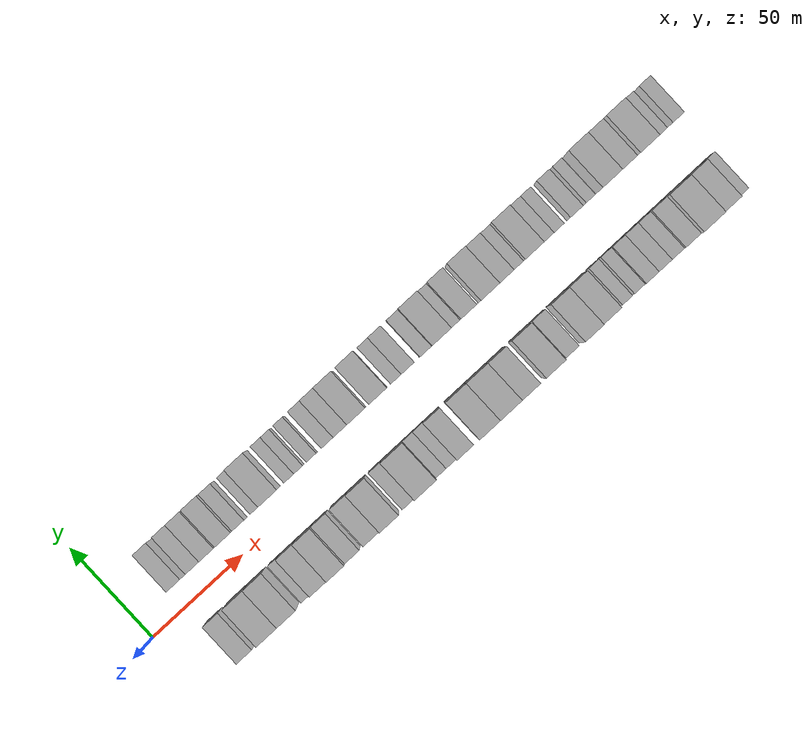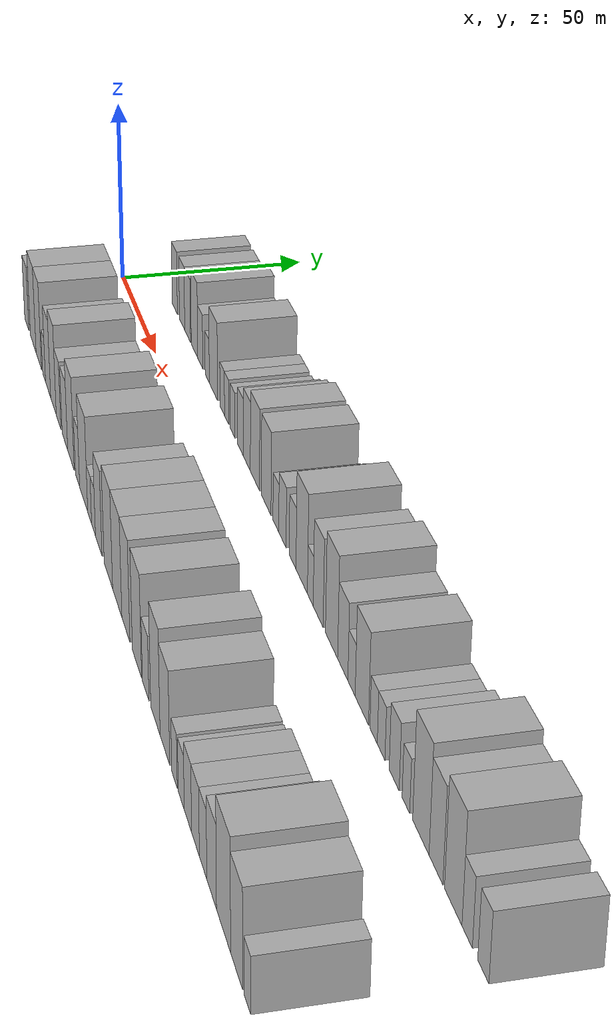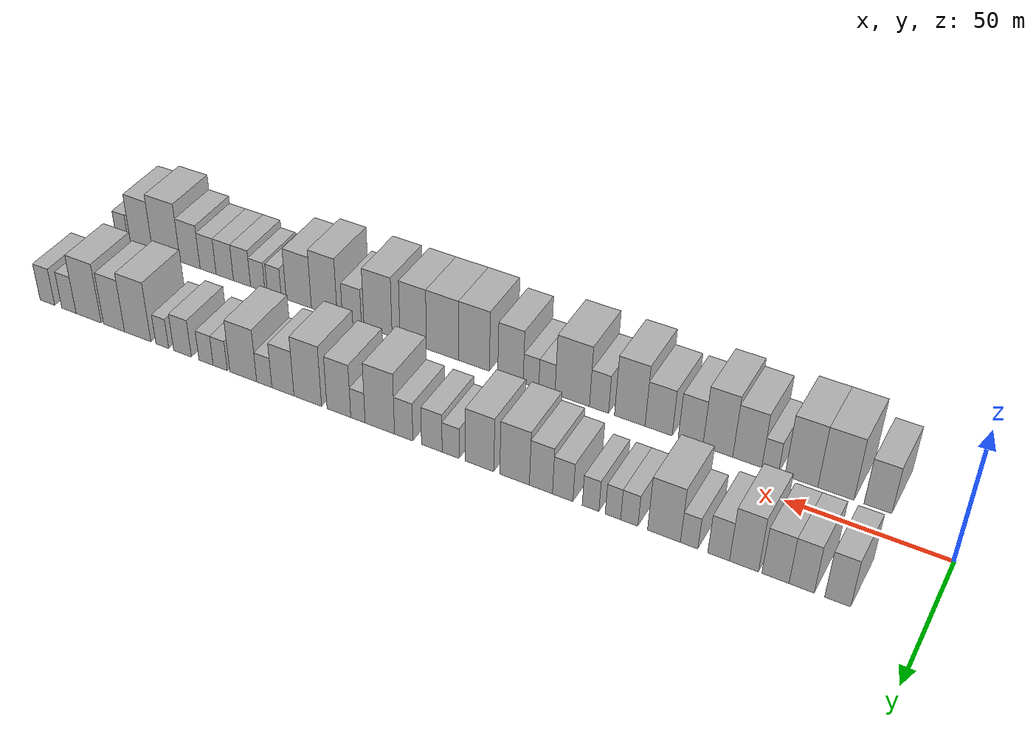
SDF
<sdf version="1.6">
 <world name="default">
  <scene>
   <sky><clouds><speed>12</speed></clouds></sky>
   <ambient>0.4 0.4 0.4 1</ambient>
   <background>0.7 0.7 0.7 1</background>
   <shadows>1</shadows>
  </scene>
  <gravity>0 0 -9.8066</gravity>
  <magnetic_field>6e-06 2.3e-05 -4.2e-05</magnetic_field>
  <physics default="0" name="default_physics" type="ode">
   <ode>
    <solver>
     <type>quick</type>
     <iters>10</iters>
     <sor>1.0</sor>
     <use_dynamic_moi_rescaling>0</use_dynamic_moi_rescaling>
    </solver>
    <constraints>
     <cfm>0</cfm>
     <erp>0.2</erp>
     <contact_max_correcting_vel>100</contact_max_correcting_vel>
     <contact_surface_layer>0.001</contact_surface_layer>
    </constraints>
   </ode>
   <max_step_size>0.004</max_step_size>
   <real_time_factor>1</real_time_factor>
   <real_time_update_rate>250</real_time_update_rate>
  </physics>
  <light name="sun" type="directional">
   <pose>0 0 10 0 0 0</pose>
   <diffuse>0.8 0.8 0.8 1</diffuse>
   <specular>0.2 0.2 0.2 1</specular>
   <attenuation>
    <range>1000</range>
    <constant>0.9</constant>
    <linear>0.01</linear>
    <quadratic>0.001</quadratic>
   </attenuation>
   <direction>-0.5 0.1 -0.9</direction>
  </light>
  <model name="building_1">
   <static>1</static>
   <pose>23.7067 20.0000 0 0.000000 0.000000 1.570796</pose>
   <link name="link">
    <pose>0 0 9.00 0 0 0</pose>
    <collision name="collision"><geometry><box><size>20.0000 7.4133 18.0000</size></box></geometry></collision>
    <visual name="visual">
     <cast_shadows>0</cast_shadows>
     <geometry><box><size>20.0000 7.4133 18.0000</size></box></geometry>
     <material>
      <script>
       <uri>model://HANNAS_wall/materials/scripts</uri>
       <uri>model://HANNAS_wall/materials/textures</uri>
       <name>vrc/HANNAS_wall</name>
      </script>
     </material>
    </visual>
   </link>
  </model>
  <model name="building_2">
   <static>1</static>
   <pose>34.0660 20.0000 0 0.000000 0.000000 1.570796</pose>
   <link name="link">
    <pose>0 0 9.00 0 0 0</pose>
    <collision name="collision"><geometry><box><size>20.0000 7.3053 18.0000</size></box></geometry></collision>
    <visual name="visual">
     <cast_shadows>0</cast_shadows>
     <geometry><box><size>20.0000 7.3053 18.0000</size></box></geometry>
     <material>
      <script>
       <uri>model://HANNAS_wall/materials/scripts</uri>
       <uri>model://HANNAS_wall/materials/textures</uri>
       <name>vrc/HANNAS_wall</name>
      </script>
     </material>
    </visual>
   </link>
  </model>
  <model name="building_3">
   <static>1</static>
   <pose>41.6893 20.0000 0 0.000000 0.000000 1.570796</pose>
   <link name="link">
    <pose>0 0 9.00 0 0 0</pose>
    <collision name="collision"><geometry><box><size>20.0000 7.9413 18.0000</size></box></geometry></collision>
    <visual name="visual">
     <cast_shadows>0</cast_shadows>
     <geometry><box><size>20.0000 7.9413 18.0000</size></box></geometry>
     <material>
      <script>
       <uri>model://HANNAS_wall/materials/scripts</uri>
       <uri>model://HANNAS_wall/materials/textures</uri>
       <name>vrc/HANNAS_wall</name>
      </script>
     </material>
    </visual>
   </link>
  </model>
  <model name="building_4">
   <static>1</static>
   <pose>50.9661 20.0000 0 0.000000 0.000000 1.570796</pose>
   <link name="link">
    <pose>0 0 10.50 0 0 0</pose>
    <collision name="collision"><geometry><box><size>20.0000 8.6124 21.0000</size></box></geometry></collision>
    <visual name="visual">
     <cast_shadows>0</cast_shadows>
     <geometry><box><size>20.0000 8.6124 21.0000</size></box></geometry>
     <material>
      <script>
       <uri>model://HANNAS_wall/materials/scripts</uri>
       <uri>model://HANNAS_wall/materials/textures</uri>
       <name>vrc/HANNAS_wall</name>
      </script>
     </material>
    </visual>
   </link>
  </model>
  <model name="building_5">
   <static>1</static>
   <pose>58.5462 20.0000 0 0.000000 0.000000 1.570796</pose>
   <link name="link">
    <pose>0 0 7.50 0 0 0</pose>
    <collision name="collision"><geometry><box><size>20.0000 6.5479 15.0000</size></box></geometry></collision>
    <visual name="visual">
     <cast_shadows>0</cast_shadows>
     <geometry><box><size>20.0000 6.5479 15.0000</size></box></geometry>
     <material>
      <script>
       <uri>model://HANNAS_wall/materials/scripts</uri>
       <uri>model://HANNAS_wall/materials/textures</uri>
       <name>vrc/HANNAS_wall</name>
      </script>
     </material>
    </visual>
   </link>
  </model>
  <model name="building_6">
   <static>1</static>
   <pose>67.4791 20.0000 0 0.000000 0.000000 1.570796</pose>
   <link name="link">
    <pose>0 0 6.00 0 0 0</pose>
    <collision name="collision"><geometry><box><size>20.0000 5.3178 12.0000</size></box></geometry></collision>
    <visual name="visual">
     <cast_shadows>0</cast_shadows>
     <geometry><box><size>20.0000 5.3178 12.0000</size></box></geometry>
     <material>
      <script>
       <uri>model://HANNAS_wall/materials/scripts</uri>
       <uri>model://HANNAS_wall/materials/textures</uri>
       <name>vrc/HANNAS_wall</name>
      </script>
     </material>
    </visual>
   </link>
  </model>
  <model name="building_7">
   <static>1</static>
   <pose>75.2144 20.0000 0 0.000000 0.000000 1.570796</pose>
   <link name="link">
    <pose>0 0 10.50 0 0 0</pose>
    <collision name="collision"><geometry><box><size>20.0000 10.1528 21.0000</size></box></geometry></collision>
    <visual name="visual">
     <cast_shadows>0</cast_shadows>
     <geometry><box><size>20.0000 10.1528 21.0000</size></box></geometry>
     <material>
      <script>
       <uri>model://HANNAS_wall/materials/scripts</uri>
       <uri>model://HANNAS_wall/materials/textures</uri>
       <name>vrc/HANNAS_wall</name>
      </script>
     </material>
    </visual>
   </link>
  </model>
  <model name="building_8">
   <static>1</static>
   <pose>86.0134 20.0000 0 0.000000 0.000000 1.570796</pose>
   <link name="link">
    <pose>0 0 6.00 0 0 0</pose>
    <collision name="collision"><geometry><box><size>20.0000 5.4453 12.0000</size></box></geometry></collision>
    <visual name="visual">
     <cast_shadows>0</cast_shadows>
     <geometry><box><size>20.0000 5.4453 12.0000</size></box></geometry>
     <material>
      <script>
       <uri>model://HANNAS_wall/materials/scripts</uri>
       <uri>model://HANNAS_wall/materials/textures</uri>
       <name>vrc/HANNAS_wall</name>
      </script>
     </material>
    </visual>
   </link>
  </model>
  <model name="building_9">
   <static>1</static>
   <pose>91.1718 20.0000 0 0.000000 0.000000 1.570796</pose>
   <link name="link">
    <pose>0 0 6.00 0 0 0</pose>
    <collision name="collision"><geometry><box><size>20.0000 4.8716 12.0000</size></box></geometry></collision>
    <visual name="visual">
     <cast_shadows>0</cast_shadows>
     <geometry><box><size>20.0000 4.8716 12.0000</size></box></geometry>
     <material>
      <script>
       <uri>model://HANNAS_wall/materials/scripts</uri>
       <uri>model://HANNAS_wall/materials/textures</uri>
       <name>vrc/HANNAS_wall</name>
      </script>
     </material>
    </visual>
   </link>
  </model>
  <model name="building_10">
   <static>1</static>
   <pose>98.2779 20.0000 0 0.000000 0.000000 1.570796</pose>
   <link name="link">
    <pose>0 0 6.00 0 0 0</pose>
    <collision name="collision"><geometry><box><size>20.0000 5.3407 12.0000</size></box></geometry></collision>
    <visual name="visual">
     <cast_shadows>0</cast_shadows>
     <geometry><box><size>20.0000 5.3407 12.0000</size></box></geometry>
     <material>
      <script>
       <uri>model://HANNAS_wall/materials/scripts</uri>
       <uri>model://HANNAS_wall/materials/textures</uri>
       <name>vrc/HANNAS_wall</name>
      </script>
     </material>
    </visual>
   </link>
  </model>
  <model name="building_11">
   <static>1</static>
   <pose>107.2684 20.0000 0 0.000000 0.000000 1.570796</pose>
   <link name="link">
    <pose>0 0 7.50 0 0 0</pose>
    <collision name="collision"><geometry><box><size>20.0000 6.6403 15.0000</size></box></geometry></collision>
    <visual name="visual">
     <cast_shadows>0</cast_shadows>
     <geometry><box><size>20.0000 6.6403 15.0000</size></box></geometry>
     <material>
      <script>
       <uri>model://HANNAS_wall/materials/scripts</uri>
       <uri>model://HANNAS_wall/materials/textures</uri>
       <name>vrc/HANNAS_wall</name>
      </script>
     </material>
    </visual>
   </link>
  </model>
  <model name="building_12">
   <static>1</static>
   <pose>114.3728 20.0000 0 0.000000 0.000000 1.570796</pose>
   <link name="link">
    <pose>0 0 9.00 0 0 0</pose>
    <collision name="collision"><geometry><box><size>20.0000 7.5686 18.0000</size></box></geometry></collision>
    <visual name="visual">
     <cast_shadows>0</cast_shadows>
     <geometry><box><size>20.0000 7.5686 18.0000</size></box></geometry>
     <material>
      <script>
       <uri>model://HANNAS_wall/materials/scripts</uri>
       <uri>model://HANNAS_wall/materials/textures</uri>
       <name>vrc/HANNAS_wall</name>
      </script>
     </material>
    </visual>
   </link>
  </model>
  <model name="building_13">
   <static>1</static>
   <pose>123.0851 20.0000 0 0.000000 0.000000 1.570796</pose>
   <link name="link">
    <pose>0 0 10.50 0 0 0</pose>
    <collision name="collision"><geometry><box><size>20.0000 9.8560 21.0000</size></box></geometry></collision>
    <visual name="visual">
     <cast_shadows>0</cast_shadows>
     <geometry><box><size>20.0000 9.8560 21.0000</size></box></geometry>
     <material>
      <script>
       <uri>model://HANNAS_wall/materials/scripts</uri>
       <uri>model://HANNAS_wall/materials/textures</uri>
       <name>vrc/HANNAS_wall</name>
      </script>
     </material>
    </visual>
   </link>
  </model>
  <model name="building_14">
   <static>1</static>
   <pose>134.8923 20.0000 0 0.000000 0.000000 1.570796</pose>
   <link name="link">
    <pose>0 0 10.50 0 0 0</pose>
    <collision name="collision"><geometry><box><size>20.0000 9.7585 21.0000</size></box></geometry></collision>
    <visual name="visual">
     <cast_shadows>0</cast_shadows>
     <geometry><box><size>20.0000 9.7585 21.0000</size></box></geometry>
     <material>
      <script>
       <uri>model://HANNAS_wall/materials/scripts</uri>
       <uri>model://HANNAS_wall/materials/textures</uri>
       <name>vrc/HANNAS_wall</name>
      </script>
     </material>
    </visual>
   </link>
  </model>
  <model name="building_15">
   <static>1</static>
   <pose>144.6743 20.0000 0 0.000000 0.000000 1.570796</pose>
   <link name="link">
    <pose>0 0 6.00 0 0 0</pose>
    <collision name="collision"><geometry><box><size>20.0000 5.8056 12.0000</size></box></geometry></collision>
    <visual name="visual">
     <cast_shadows>0</cast_shadows>
     <geometry><box><size>20.0000 5.8056 12.0000</size></box></geometry>
     <material>
      <script>
       <uri>model://HANNAS_wall/materials/scripts</uri>
       <uri>model://HANNAS_wall/materials/textures</uri>
       <name>vrc/HANNAS_wall</name>
      </script>
     </material>
    </visual>
   </link>
  </model>
  <model name="building_16">
   <static>1</static>
   <pose>151.1479 20.0000 0 0.000000 0.000000 1.570796</pose>
   <link name="link">
    <pose>0 0 7.50 0 0 0</pose>
    <collision name="collision"><geometry><box><size>20.0000 7.1416 15.0000</size></box></geometry></collision>
    <visual name="visual">
     <cast_shadows>0</cast_shadows>
     <geometry><box><size>20.0000 7.1416 15.0000</size></box></geometry>
     <material>
      <script>
       <uri>model://HANNAS_wall/materials/scripts</uri>
       <uri>model://HANNAS_wall/materials/textures</uri>
       <name>vrc/HANNAS_wall</name>
      </script>
     </material>
    </visual>
   </link>
  </model>
  <model name="building_17">
   <static>1</static>
   <pose>160.9357 20.0000 0 0.000000 0.000000 1.570796</pose>
   <link name="link">
    <pose>0 0 7.50 0 0 0</pose>
    <collision name="collision"><geometry><box><size>20.0000 6.4339 15.0000</size></box></geometry></collision>
    <visual name="visual">
     <cast_shadows>0</cast_shadows>
     <geometry><box><size>20.0000 6.4339 15.0000</size></box></geometry>
     <material>
      <script>
       <uri>model://HANNAS_wall/materials/scripts</uri>
       <uri>model://HANNAS_wall/materials/textures</uri>
       <name>vrc/HANNAS_wall</name>
      </script>
     </material>
    </visual>
   </link>
  </model>
  <model name="building_18">
   <static>1</static>
   <pose>169.3864 20.0000 0 0.000000 0.000000 1.570796</pose>
   <link name="link">
    <pose>0 0 12.00 0 0 0</pose>
    <collision name="collision"><geometry><box><size>20.0000 10.4674 24.0000</size></box></geometry></collision>
    <visual name="visual">
     <cast_shadows>0</cast_shadows>
     <geometry><box><size>20.0000 10.4674 24.0000</size></box></geometry>
     <material>
      <script>
       <uri>model://HANNAS_wall/materials/scripts</uri>
       <uri>model://HANNAS_wall/materials/textures</uri>
       <name>vrc/HANNAS_wall</name>
      </script>
     </material>
    </visual>
   </link>
  </model>
  <model name="building_19">
   <static>1</static>
   <pose>177.2051 20.0000 0 0.000000 0.000000 1.570796</pose>
   <link name="link">
    <pose>0 0 6.00 0 0 0</pose>
    <collision name="collision"><geometry><box><size>20.0000 5.1700 12.0000</size></box></geometry></collision>
    <visual name="visual">
     <cast_shadows>0</cast_shadows>
     <geometry><box><size>20.0000 5.1700 12.0000</size></box></geometry>
     <material>
      <script>
       <uri>model://HANNAS_wall/materials/scripts</uri>
       <uri>model://HANNAS_wall/materials/textures</uri>
       <name>vrc/HANNAS_wall</name>
      </script>
     </material>
    </visual>
   </link>
  </model>
  <model name="building_20">
   <static>1</static>
   <pose>184.1034 20.0000 0 0.000000 0.000000 1.570796</pose>
   <link name="link">
    <pose>0 0 10.50 0 0 0</pose>
    <collision name="collision"><geometry><box><size>20.0000 8.6266 21.0000</size></box></geometry></collision>
    <visual name="visual">
     <cast_shadows>0</cast_shadows>
     <geometry><box><size>20.0000 8.6266 21.0000</size></box></geometry>
     <material>
      <script>
       <uri>model://HANNAS_wall/materials/scripts</uri>
       <uri>model://HANNAS_wall/materials/textures</uri>
       <name>vrc/HANNAS_wall</name>
      </script>
     </material>
    </visual>
   </link>
  </model>
  <model name="building_21">
   <static>1</static>
   <pose>195.5062 20.0000 0 0.000000 0.000000 1.570796</pose>
   <link name="link">
    <pose>0 0 12.00 0 0 0</pose>
    <collision name="collision"><geometry><box><size>20.0000 10.1790 24.0000</size></box></geometry></collision>
    <visual name="visual">
     <cast_shadows>0</cast_shadows>
     <geometry><box><size>20.0000 10.1790 24.0000</size></box></geometry>
     <material>
      <script>
       <uri>model://HANNAS_wall/materials/scripts</uri>
       <uri>model://HANNAS_wall/materials/textures</uri>
       <name>vrc/HANNAS_wall</name>
      </script>
     </material>
    </visual>
   </link>
  </model>
  <model name="building_22">
   <static>1</static>
   <pose>204.7365 20.0000 0 0.000000 0.000000 1.570796</pose>
   <link name="link">
    <pose>0 0 9.00 0 0 0</pose>
    <collision name="collision"><geometry><box><size>20.0000 8.2816 18.0000</size></box></geometry></collision>
    <visual name="visual">
     <cast_shadows>0</cast_shadows>
     <geometry><box><size>20.0000 8.2816 18.0000</size></box></geometry>
     <material>
      <script>
       <uri>model://HANNAS_wall/materials/scripts</uri>
       <uri>model://HANNAS_wall/materials/textures</uri>
       <name>vrc/HANNAS_wall</name>
      </script>
     </material>
    </visual>
   </link>
  </model>
  <model name="building_23">
   <static>1</static>
   <pose>211.7590 20.0000 0 0.000000 0.000000 1.570796</pose>
   <link name="link">
    <pose>0 0 6.00 0 0 0</pose>
    <collision name="collision"><geometry><box><size>20.0000 5.7634 12.0000</size></box></geometry></collision>
    <visual name="visual">
     <cast_shadows>0</cast_shadows>
     <geometry><box><size>20.0000 5.7634 12.0000</size></box></geometry>
     <material>
      <script>
       <uri>model://HANNAS_wall/materials/scripts</uri>
       <uri>model://HANNAS_wall/materials/textures</uri>
       <name>vrc/HANNAS_wall</name>
      </script>
     </material>
    </visual>
   </link>
  </model>
  <model name="building_24">
   <static>1</static>
   <pose>219.7592 20.0000 0 0.000000 0.000000 1.570796</pose>
   <link name="link">
    <pose>0 0 10.50 0 0 0</pose>
    <collision name="collision"><geometry><box><size>20.0000 10.2370 21.0000</size></box></geometry></collision>
    <visual name="visual">
     <cast_shadows>0</cast_shadows>
     <geometry><box><size>20.0000 10.2370 21.0000</size></box></geometry>
     <material>
      <script>
       <uri>model://HANNAS_wall/materials/scripts</uri>
       <uri>model://HANNAS_wall/materials/textures</uri>
       <name>vrc/HANNAS_wall</name>
      </script>
     </material>
    </visual>
   </link>
  </model>
  <model name="building_25">
   <static>1</static>
   <pose>228.6135 20.0000 0 0.000000 0.000000 1.570796</pose>
   <link name="link">
    <pose>0 0 6.00 0 0 0</pose>
    <collision name="collision"><geometry><box><size>20.0000 5.4715 12.0000</size></box></geometry></collision>
    <visual name="visual">
     <cast_shadows>0</cast_shadows>
     <geometry><box><size>20.0000 5.4715 12.0000</size></box></geometry>
     <material>
      <script>
       <uri>model://HANNAS_wall/materials/scripts</uri>
       <uri>model://HANNAS_wall/materials/textures</uri>
       <name>vrc/HANNAS_wall</name>
      </script>
     </material>
    </visual>
   </link>
  </model>
  <model name="building_26">
   <static>1</static>
   <pose>234.1191 20.0000 0 0.000000 0.000000 1.570796</pose>
   <link name="link">
    <pose>0 0 6.00 0 0 0</pose>
    <collision name="collision"><geometry><box><size>20.0000 5.5398 12.0000</size></box></geometry></collision>
    <visual name="visual">
     <cast_shadows>0</cast_shadows>
     <geometry><box><size>20.0000 5.5398 12.0000</size></box></geometry>
     <material>
      <script>
       <uri>model://HANNAS_wall/materials/scripts</uri>
       <uri>model://HANNAS_wall/materials/textures</uri>
       <name>vrc/HANNAS_wall</name>
      </script>
     </material>
    </visual>
   </link>
  </model>
  <model name="building_27">
   <static>1</static>
   <pose>243.3806 20.0000 0 0.000000 0.000000 1.570796</pose>
   <link name="link">
    <pose>0 0 7.50 0 0 0</pose>
    <collision name="collision"><geometry><box><size>20.0000 6.9831 15.0000</size></box></geometry></collision>
    <visual name="visual">
     <cast_shadows>0</cast_shadows>
     <geometry><box><size>20.0000 6.9831 15.0000</size></box></geometry>
     <material>
      <script>
       <uri>model://HANNAS_wall/materials/scripts</uri>
       <uri>model://HANNAS_wall/materials/textures</uri>
       <name>vrc/HANNAS_wall</name>
      </script>
     </material>
    </visual>
   </link>
  </model>
  <model name="building_28">
   <static>1</static>
   <pose>251.4328 20.0000 0 0.000000 0.000000 1.570796</pose>
   <link name="link">
    <pose>0 0 6.00 0 0 0</pose>
    <collision name="collision"><geometry><box><size>20.0000 5.1213 12.0000</size></box></geometry></collision>
    <visual name="visual">
     <cast_shadows>0</cast_shadows>
     <geometry><box><size>20.0000 5.1213 12.0000</size></box></geometry>
     <material>
      <script>
       <uri>model://HANNAS_wall/materials/scripts</uri>
       <uri>model://HANNAS_wall/materials/textures</uri>
       <name>vrc/HANNAS_wall</name>
      </script>
     </material>
    </visual>
   </link>
  </model>
  <model name="building_29">
   <static>1</static>
   <pose>261.3288 20.0000 0 0.000000 0.000000 1.570796</pose>
   <link name="link">
    <pose>0 0 12.00 0 0 0</pose>
    <collision name="collision"><geometry><box><size>20.0000 10.6708 24.0000</size></box></geometry></collision>
    <visual name="visual">
     <cast_shadows>0</cast_shadows>
     <geometry><box><size>20.0000 10.6708 24.0000</size></box></geometry>
     <material>
      <script>
       <uri>model://HANNAS_wall/materials/scripts</uri>
       <uri>model://HANNAS_wall/materials/textures</uri>
       <name>vrc/HANNAS_wall</name>
      </script>
     </material>
    </visual>
   </link>
  </model>
  <model name="building_30">
   <static>1</static>
   <pose>270.9674 20.0000 0 0.000000 0.000000 1.570796</pose>
   <link name="link">
    <pose>0 0 10.50 0 0 0</pose>
    <collision name="collision"><geometry><box><size>20.0000 8.6062 21.0000</size></box></geometry></collision>
    <visual name="visual">
     <cast_shadows>0</cast_shadows>
     <geometry><box><size>20.0000 8.6062 21.0000</size></box></geometry>
     <material>
      <script>
       <uri>model://HANNAS_wall/materials/scripts</uri>
       <uri>model://HANNAS_wall/materials/textures</uri>
       <name>vrc/HANNAS_wall</name>
      </script>
     </material>
    </visual>
   </link>
  </model>
  <model name="building_31">
   <static>1</static>
   <pose>281.4899 20.0000 0 0.000000 0.000000 1.570796</pose>
   <link name="link">
    <pose>0 0 12.00 0 0 0</pose>
    <collision name="collision"><geometry><box><size>20.0000 10.4389 24.0000</size></box></geometry></collision>
    <visual name="visual">
     <cast_shadows>0</cast_shadows>
     <geometry><box><size>20.0000 10.4389 24.0000</size></box></geometry>
     <material>
      <script>
       <uri>model://HANNAS_wall/materials/scripts</uri>
       <uri>model://HANNAS_wall/materials/textures</uri>
       <name>vrc/HANNAS_wall</name>
      </script>
     </material>
    </visual>
   </link>
  </model>
  <model name="building_32">
   <static>1</static>
   <pose>289.7101 20.0000 0 0.000000 0.000000 1.570796</pose>
   <link name="link">
    <pose>0 0 7.50 0 0 0</pose>
    <collision name="collision"><geometry><box><size>20.0000 6.0015 15.0000</size></box></geometry></collision>
    <visual name="visual">
     <cast_shadows>0</cast_shadows>
     <geometry><box><size>20.0000 6.0015 15.0000</size></box></geometry>
     <material>
      <script>
       <uri>model://HANNAS_wall/materials/scripts</uri>
       <uri>model://HANNAS_wall/materials/textures</uri>
       <name>vrc/HANNAS_wall</name>
      </script>
     </material>
    </visual>
   </link>
  </model>
  <model name="building_33">
   <static>1</static>
   <pose>298.8241 20.0000 0 0.000000 0.000000 1.570796</pose>
   <link name="link">
    <pose>0 0 7.50 0 0 0</pose>
    <collision name="collision"><geometry><box><size>20.0000 6.2265 15.0000</size></box></geometry></collision>
    <visual name="visual">
     <cast_shadows>0</cast_shadows>
     <geometry><box><size>20.0000 6.2265 15.0000</size></box></geometry>
     <material>
      <script>
       <uri>model://HANNAS_wall/materials/scripts</uri>
       <uri>model://HANNAS_wall/materials/textures</uri>
       <name>vrc/HANNAS_wall</name>
      </script>
     </material>
    </visual>
   </link>
  </model>
  <model name="building_34">
   <static>1</static>
   <pose>25.1839 -20.0000 0 0.000000 0.000000 1.570796</pose>
   <link name="link">
    <pose>0 0 9.00 0 0 0</pose>
    <collision name="collision"><geometry><box><size>20.0000 8.3678 18.0000</size></box></geometry></collision>
    <visual name="visual">
     <cast_shadows>0</cast_shadows>
     <geometry><box><size>20.0000 8.3678 18.0000</size></box></geometry>
     <material>
      <script>
       <uri>model://HANNAS_wall/materials/scripts</uri>
       <uri>model://HANNAS_wall/materials/textures</uri>
       <name>vrc/HANNAS_wall</name>
      </script>
     </material>
    </visual>
   </link>
  </model>
  <model name="building_35">
   <static>1</static>
   <pose>37.8844 -20.0000 0 0.000000 0.000000 1.570796</pose>
   <link name="link">
    <pose>0 0 12.00 0 0 0</pose>
    <collision name="collision"><geometry><box><size>20.0000 11.0331 24.0000</size></box></geometry></collision>
    <visual name="visual">
     <cast_shadows>0</cast_shadows>
     <geometry><box><size>20.0000 11.0331 24.0000</size></box></geometry>
     <material>
      <script>
       <uri>model://HANNAS_wall/materials/scripts</uri>
       <uri>model://HANNAS_wall/materials/textures</uri>
       <name>vrc/HANNAS_wall</name>
      </script>
     </material>
    </visual>
   </link>
  </model>
  <model name="building_36">
   <static>1</static>
   <pose>48.5045 -20.0000 0 0.000000 0.000000 1.570796</pose>
   <link name="link">
    <pose>0 0 12.00 0 0 0</pose>
    <collision name="collision"><geometry><box><size>20.0000 10.2072 24.0000</size></box></geometry></collision>
    <visual name="visual">
     <cast_shadows>0</cast_shadows>
     <geometry><box><size>20.0000 10.2072 24.0000</size></box></geometry>
     <material>
      <script>
       <uri>model://HANNAS_wall/materials/scripts</uri>
       <uri>model://HANNAS_wall/materials/textures</uri>
       <name>vrc/HANNAS_wall</name>
      </script>
     </material>
    </visual>
   </link>
  </model>
  <model name="building_37">
   <static>1</static>
   <pose>58.2221 -20.0000 0 0.000000 0.000000 1.570796</pose>
   <link name="link">
    <pose>0 0 6.00 0 0 0</pose>
    <collision name="collision"><geometry><box><size>20.0000 5.2281 12.0000</size></box></geometry></collision>
    <visual name="visual">
     <cast_shadows>0</cast_shadows>
     <geometry><box><size>20.0000 5.2281 12.0000</size></box></geometry>
     <material>
      <script>
       <uri>model://HANNAS_wall/materials/scripts</uri>
       <uri>model://HANNAS_wall/materials/textures</uri>
       <name>vrc/HANNAS_wall</name>
      </script>
     </material>
    </visual>
   </link>
  </model>
  <model name="building_38">
   <static>1</static>
   <pose>65.4593 -20.0000 0 0.000000 0.000000 1.570796</pose>
   <link name="link">
    <pose>0 0 10.50 0 0 0</pose>
    <collision name="collision"><geometry><box><size>20.0000 9.2462 21.0000</size></box></geometry></collision>
    <visual name="visual">
     <cast_shadows>0</cast_shadows>
     <geometry><box><size>20.0000 9.2462 21.0000</size></box></geometry>
     <material>
      <script>
       <uri>model://HANNAS_wall/materials/scripts</uri>
       <uri>model://HANNAS_wall/materials/textures</uri>
       <name>vrc/HANNAS_wall</name>
      </script>
     </material>
    </visual>
   </link>
  </model>
  <model name="building_39">
   <static>1</static>
   <pose>74.9017 -20.0000 0 0.000000 0.000000 1.570796</pose>
   <link name="link">
    <pose>0 0 12.00 0 0 0</pose>
    <collision name="collision"><geometry><box><size>20.0000 9.6387 24.0000</size></box></geometry></collision>
    <visual name="visual">
     <cast_shadows>0</cast_shadows>
     <geometry><box><size>20.0000 9.6387 24.0000</size></box></geometry>
     <material>
      <script>
       <uri>model://HANNAS_wall/materials/scripts</uri>
       <uri>model://HANNAS_wall/materials/textures</uri>
       <name>vrc/HANNAS_wall</name>
      </script>
     </material>
    </visual>
   </link>
  </model>
  <model name="building_40">
   <static>1</static>
   <pose>83.7259 -20.0000 0 0.000000 0.000000 1.570796</pose>
   <link name="link">
    <pose>0 0 9.00 0 0 0</pose>
    <collision name="collision"><geometry><box><size>20.0000 8.0097 18.0000</size></box></geometry></collision>
    <visual name="visual">
     <cast_shadows>0</cast_shadows>
     <geometry><box><size>20.0000 8.0097 18.0000</size></box></geometry>
     <material>
      <script>
       <uri>model://HANNAS_wall/materials/scripts</uri>
       <uri>model://HANNAS_wall/materials/textures</uri>
       <name>vrc/HANNAS_wall</name>
      </script>
     </material>
    </visual>
   </link>
  </model>
  <model name="building_41">
   <static>1</static>
   <pose>94.2265 -20.0000 0 0.000000 0.000000 1.570796</pose>
   <link name="link">
    <pose>0 0 9.00 0 0 0</pose>
    <collision name="collision"><geometry><box><size>20.0000 8.9914 18.0000</size></box></geometry></collision>
    <visual name="visual">
     <cast_shadows>0</cast_shadows>
     <geometry><box><size>20.0000 8.9914 18.0000</size></box></geometry>
     <material>
      <script>
       <uri>model://HANNAS_wall/materials/scripts</uri>
       <uri>model://HANNAS_wall/materials/textures</uri>
       <name>vrc/HANNAS_wall</name>
      </script>
     </material>
    </visual>
   </link>
  </model>
  <model name="building_42">
   <static>1</static>
   <pose>103.8564 -20.0000 0 0.000000 0.000000 1.570796</pose>
   <link name="link">
    <pose>0 0 12.00 0 0 0</pose>
    <collision name="collision"><geometry><box><size>20.0000 10.2684 24.0000</size></box></geometry></collision>
    <visual name="visual">
     <cast_shadows>0</cast_shadows>
     <geometry><box><size>20.0000 10.2684 24.0000</size></box></geometry>
     <material>
      <script>
       <uri>model://HANNAS_wall/materials/scripts</uri>
       <uri>model://HANNAS_wall/materials/textures</uri>
       <name>vrc/HANNAS_wall</name>
      </script>
     </material>
    </visual>
   </link>
  </model>
  <model name="building_43">
   <static>1</static>
   <pose>114.2496 -20.0000 0 0.000000 0.000000 1.570796</pose>
   <link name="link">
    <pose>0 0 7.50 0 0 0</pose>
    <collision name="collision"><geometry><box><size>20.0000 6.5179 15.0000</size></box></geometry></collision>
    <visual name="visual">
     <cast_shadows>0</cast_shadows>
     <geometry><box><size>20.0000 6.5179 15.0000</size></box></geometry>
     <material>
      <script>
       <uri>model://HANNAS_wall/materials/scripts</uri>
       <uri>model://HANNAS_wall/materials/textures</uri>
       <name>vrc/HANNAS_wall</name>
      </script>
     </material>
    </visual>
   </link>
  </model>
  <model name="building_44">
   <static>1</static>
   <pose>123.4821 -20.0000 0 0.000000 0.000000 1.570796</pose>
   <link name="link">
    <pose>0 0 12.00 0 0 0</pose>
    <collision name="collision"><geometry><box><size>20.0000 11.9471 24.0000</size></box></geometry></collision>
    <visual name="visual">
     <cast_shadows>0</cast_shadows>
     <geometry><box><size>20.0000 11.9471 24.0000</size></box></geometry>
     <material>
      <script>
       <uri>model://HANNAS_wall/materials/scripts</uri>
       <uri>model://HANNAS_wall/materials/textures</uri>
       <name>vrc/HANNAS_wall</name>
      </script>
     </material>
    </visual>
   </link>
  </model>
  <model name="building_45">
   <static>1</static>
   <pose>132.2777 -20.0000 0 0.000000 0.000000 1.570796</pose>
   <link name="link">
    <pose>0 0 6.00 0 0 0</pose>
    <collision name="collision"><geometry><box><size>20.0000 5.6442 12.0000</size></box></geometry></collision>
    <visual name="visual">
     <cast_shadows>0</cast_shadows>
     <geometry><box><size>20.0000 5.6442 12.0000</size></box></geometry>
     <material>
      <script>
       <uri>model://HANNAS_wall/materials/scripts</uri>
       <uri>model://HANNAS_wall/materials/textures</uri>
       <name>vrc/HANNAS_wall</name>
      </script>
     </material>
    </visual>
   </link>
  </model>
  <model name="building_46">
   <static>1</static>
   <pose>137.8604 -20.0000 0 0.000000 0.000000 1.570796</pose>
   <link name="link">
    <pose>0 0 6.00 0 0 0</pose>
    <collision name="collision"><geometry><box><size>20.0000 5.5211 12.0000</size></box></geometry></collision>
    <visual name="visual">
     <cast_shadows>0</cast_shadows>
     <geometry><box><size>20.0000 5.5211 12.0000</size></box></geometry>
     <material>
      <script>
       <uri>model://HANNAS_wall/materials/scripts</uri>
       <uri>model://HANNAS_wall/materials/textures</uri>
       <name>vrc/HANNAS_wall</name>
      </script>
     </material>
    </visual>
   </link>
  </model>
  <model name="building_47">
   <static>1</static>
   <pose>145.1463 -20.0000 0 0.000000 0.000000 1.570796</pose>
   <link name="link">
    <pose>0 0 10.50 0 0 0</pose>
    <collision name="collision"><geometry><box><size>20.0000 9.0507 21.0000</size></box></geometry></collision>
    <visual name="visual">
     <cast_shadows>0</cast_shadows>
     <geometry><box><size>20.0000 9.0507 21.0000</size></box></geometry>
     <material>
      <script>
       <uri>model://HANNAS_wall/materials/scripts</uri>
       <uri>model://HANNAS_wall/materials/textures</uri>
       <name>vrc/HANNAS_wall</name>
      </script>
     </material>
    </visual>
   </link>
  </model>
  <model name="building_48">
   <static>1</static>
   <pose>158.2835 -20.0000 0 0.000000 0.000000 1.570796</pose>
   <link name="link">
    <pose>0 0 12.00 0 0 0</pose>
    <collision name="collision"><geometry><box><size>20.0000 11.2238 24.0000</size></box></geometry></collision>
    <visual name="visual">
     <cast_shadows>0</cast_shadows>
     <geometry><box><size>20.0000 11.2238 24.0000</size></box></geometry>
     <material>
      <script>
       <uri>model://HANNAS_wall/materials/scripts</uri>
       <uri>model://HANNAS_wall/materials/textures</uri>
       <name>vrc/HANNAS_wall</name>
      </script>
     </material>
    </visual>
   </link>
  </model>
  <model name="building_49">
   <static>1</static>
   <pose>169.7892 -20.0000 0 0.000000 0.000000 1.570796</pose>
   <link name="link">
    <pose>0 0 12.00 0 0 0</pose>
    <collision name="collision"><geometry><box><size>20.0000 11.7876 24.0000</size></box></geometry></collision>
    <visual name="visual">
     <cast_shadows>0</cast_shadows>
     <geometry><box><size>20.0000 11.7876 24.0000</size></box></geometry>
     <material>
      <script>
       <uri>model://HANNAS_wall/materials/scripts</uri>
       <uri>model://HANNAS_wall/materials/textures</uri>
       <name>vrc/HANNAS_wall</name>
      </script>
     </material>
    </visual>
   </link>
  </model>
  <model name="building_50">
   <static>1</static>
   <pose>180.6211 -20.0000 0 0.000000 0.000000 1.570796</pose>
   <link name="link">
    <pose>0 0 12.00 0 0 0</pose>
    <collision name="collision"><geometry><box><size>20.0000 9.8762 24.0000</size></box></geometry></collision>
    <visual name="visual">
     <cast_shadows>0</cast_shadows>
     <geometry><box><size>20.0000 9.8762 24.0000</size></box></geometry>
     <material>
      <script>
       <uri>model://HANNAS_wall/materials/scripts</uri>
       <uri>model://HANNAS_wall/materials/textures</uri>
       <name>vrc/HANNAS_wall</name>
      </script>
     </material>
    </visual>
   </link>
  </model>
  <model name="building_51">
   <static>1</static>
   <pose>193.9153 -20.0000 0 0.000000 0.000000 1.570796</pose>
   <link name="link">
    <pose>0 0 12.00 0 0 0</pose>
    <collision name="collision"><geometry><box><size>20.0000 10.7122 24.0000</size></box></geometry></collision>
    <visual name="visual">
     <cast_shadows>0</cast_shadows>
     <geometry><box><size>20.0000 10.7122 24.0000</size></box></geometry>
     <material>
      <script>
       <uri>model://HANNAS_wall/materials/scripts</uri>
       <uri>model://HANNAS_wall/materials/textures</uri>
       <name>vrc/HANNAS_wall</name>
      </script>
     </material>
    </visual>
   </link>
  </model>
  <model name="building_52">
   <static>1</static>
   <pose>203.9388 -20.0000 0 0.000000 0.000000 1.570796</pose>
   <link name="link">
    <pose>0 0 7.50 0 0 0</pose>
    <collision name="collision"><geometry><box><size>20.0000 7.3349 15.0000</size></box></geometry></collision>
    <visual name="visual">
     <cast_shadows>0</cast_shadows>
     <geometry><box><size>20.0000 7.3349 15.0000</size></box></geometry>
     <material>
      <script>
       <uri>model://HANNAS_wall/materials/scripts</uri>
       <uri>model://HANNAS_wall/materials/textures</uri>
       <name>vrc/HANNAS_wall</name>
      </script>
     </material>
    </visual>
   </link>
  </model>
  <model name="building_53">
   <static>1</static>
   <pose>214.6639 -20.0000 0 0.000000 0.000000 1.570796</pose>
   <link name="link">
    <pose>0 0 12.00 0 0 0</pose>
    <collision name="collision"><geometry><box><size>20.0000 10.1152 24.0000</size></box></geometry></collision>
    <visual name="visual">
     <cast_shadows>0</cast_shadows>
     <geometry><box><size>20.0000 10.1152 24.0000</size></box></geometry>
     <material>
      <script>
       <uri>model://HANNAS_wall/materials/scripts</uri>
       <uri>model://HANNAS_wall/materials/textures</uri>
       <name>vrc/HANNAS_wall</name>
      </script>
     </material>
    </visual>
   </link>
  </model>
  <model name="building_54">
   <static>1</static>
   <pose>224.7370 -20.0000 0 0.000000 0.000000 1.570796</pose>
   <link name="link">
    <pose>0 0 10.50 0 0 0</pose>
    <collision name="collision"><geometry><box><size>20.0000 10.0311 21.0000</size></box></geometry></collision>
    <visual name="visual">
     <cast_shadows>0</cast_shadows>
     <geometry><box><size>20.0000 10.0311 21.0000</size></box></geometry>
     <material>
      <script>
       <uri>model://HANNAS_wall/materials/scripts</uri>
       <uri>model://HANNAS_wall/materials/textures</uri>
       <name>vrc/HANNAS_wall</name>
      </script>
     </material>
    </visual>
   </link>
  </model>
  <model name="building_55">
   <static>1</static>
   <pose>234.5355 -20.0000 0 0.000000 0.000000 1.570796</pose>
   <link name="link">
    <pose>0 0 6.00 0 0 0</pose>
    <collision name="collision"><geometry><box><size>20.0000 5.5658 12.0000</size></box></geometry></collision>
    <visual name="visual">
     <cast_shadows>0</cast_shadows>
     <geometry><box><size>20.0000 5.5658 12.0000</size></box></geometry>
     <material>
      <script>
       <uri>model://HANNAS_wall/materials/scripts</uri>
       <uri>model://HANNAS_wall/materials/textures</uri>
       <name>vrc/HANNAS_wall</name>
      </script>
     </material>
    </visual>
   </link>
  </model>
  <model name="building_56">
   <static>1</static>
   <pose>241.2391 -20.0000 0 0.000000 0.000000 1.570796</pose>
   <link name="link">
    <pose>0 0 6.00 0 0 0</pose>
    <collision name="collision"><geometry><box><size>20.0000 5.8416 12.0000</size></box></geometry></collision>
    <visual name="visual">
     <cast_shadows>0</cast_shadows>
     <geometry><box><size>20.0000 5.8416 12.0000</size></box></geometry>
     <material>
      <script>
       <uri>model://HANNAS_wall/materials/scripts</uri>
       <uri>model://HANNAS_wall/materials/textures</uri>
       <name>vrc/HANNAS_wall</name>
      </script>
     </material>
    </visual>
   </link>
  </model>
  <model name="building_57">
   <static>1</static>
   <pose>247.6698 -20.0000 0 0.000000 0.000000 1.570796</pose>
   <link name="link">
    <pose>0 0 7.50 0 0 0</pose>
    <collision name="collision"><geometry><box><size>20.0000 7.0196 15.0000</size></box></geometry></collision>
    <visual name="visual">
     <cast_shadows>0</cast_shadows>
     <geometry><box><size>20.0000 7.0196 15.0000</size></box></geometry>
     <material>
      <script>
       <uri>model://HANNAS_wall/materials/scripts</uri>
       <uri>model://HANNAS_wall/materials/textures</uri>
       <name>vrc/HANNAS_wall</name>
      </script>
     </material>
    </visual>
   </link>
  </model>
  <model name="building_58">
   <static>1</static>
   <pose>254.7539 -20.0000 0 0.000000 0.000000 1.570796</pose>
   <link name="link">
    <pose>0 0 7.50 0 0 0</pose>
    <collision name="collision"><geometry><box><size>20.0000 7.1487 15.0000</size></box></geometry></collision>
    <visual name="visual">
     <cast_shadows>0</cast_shadows>
     <geometry><box><size>20.0000 7.1487 15.0000</size></box></geometry>
     <material>
      <script>
       <uri>model://HANNAS_wall/materials/scripts</uri>
       <uri>model://HANNAS_wall/materials/textures</uri>
       <name>vrc/HANNAS_wall</name>
      </script>
     </material>
    </visual>
   </link>
  </model>
  <model name="building_59">
   <static>1</static>
   <pose>261.6729 -20.0000 0 0.000000 0.000000 1.570796</pose>
   <link name="link">
    <pose>0 0 7.50 0 0 0</pose>
    <collision name="collision"><geometry><box><size>20.0000 6.6892 15.0000</size></box></geometry></collision>
    <visual name="visual">
     <cast_shadows>0</cast_shadows>
     <geometry><box><size>20.0000 6.6892 15.0000</size></box></geometry>
     <material>
      <script>
       <uri>model://HANNAS_wall/materials/scripts</uri>
       <uri>model://HANNAS_wall/materials/textures</uri>
       <name>vrc/HANNAS_wall</name>
      </script>
     </material>
    </visual>
   </link>
  </model>
  <model name="building_60">
   <static>1</static>
   <pose>269.2048 -20.0000 0 0.000000 0.000000 1.570796</pose>
   <link name="link">
    <pose>0 0 9.00 0 0 0</pose>
    <collision name="collision"><geometry><box><size>20.0000 8.3747 18.0000</size></box></geometry></collision>
    <visual name="visual">
     <cast_shadows>0</cast_shadows>
     <geometry><box><size>20.0000 8.3747 18.0000</size></box></geometry>
     <material>
      <script>
       <uri>model://HANNAS_wall/materials/scripts</uri>
       <uri>model://HANNAS_wall/materials/textures</uri>
       <name>vrc/HANNAS_wall</name>
      </script>
     </material>
    </visual>
   </link>
  </model>
  <model name="building_61">
   <static>1</static>
   <pose>279.2775 -20.0000 0 0.000000 0.000000 1.570796</pose>
   <link name="link">
    <pose>0 0 12.00 0 0 0</pose>
    <collision name="collision"><geometry><box><size>20.0000 11.7707 24.0000</size></box></geometry></collision>
    <visual name="visual">
     <cast_shadows>0</cast_shadows>
     <geometry><box><size>20.0000 11.7707 24.0000</size></box></geometry>
     <material>
      <script>
       <uri>model://HANNAS_wall/materials/scripts</uri>
       <uri>model://HANNAS_wall/materials/textures</uri>
       <name>vrc/HANNAS_wall</name>
      </script>
     </material>
    </visual>
   </link>
  </model>
  <model name="building_62">
   <static>1</static>
   <pose>289.9084 -20.0000 0 0.000000 0.000000 1.570796</pose>
   <link name="link">
    <pose>0 0 10.50 0 0 0</pose>
    <collision name="collision"><geometry><box><size>20.0000 9.4911 21.0000</size></box></geometry></collision>
    <visual name="visual">
     <cast_shadows>0</cast_shadows>
     <geometry><box><size>20.0000 9.4911 21.0000</size></box></geometry>
     <material>
      <script>
       <uri>model://HANNAS_wall/materials/scripts</uri>
       <uri>model://HANNAS_wall/materials/textures</uri>
       <name>vrc/HANNAS_wall</name>
      </script>
     </material>
    </visual>
   </link>
  </model>
  <model name="building_63">
   <static>1</static>
   <pose>298.2607 -20.0000 0 0.000000 0.000000 1.570796</pose>
   <link name="link">
    <pose>0 0 6.00 0 0 0</pose>
    <collision name="collision"><geometry><box><size>20.0000 5.2134 12.0000</size></box></geometry></collision>
    <visual name="visual">
     <cast_shadows>0</cast_shadows>
     <geometry><box><size>20.0000 5.2134 12.0000</size></box></geometry>
     <material>
      <script>
       <uri>model://HANNAS_wall/materials/scripts</uri>
       <uri>model://HANNAS_wall/materials/textures</uri>
       <name>vrc/HANNAS_wall</name>
      </script>
     </material>
    </visual>
   </link>
  </model>
 </world>
</sdf>
